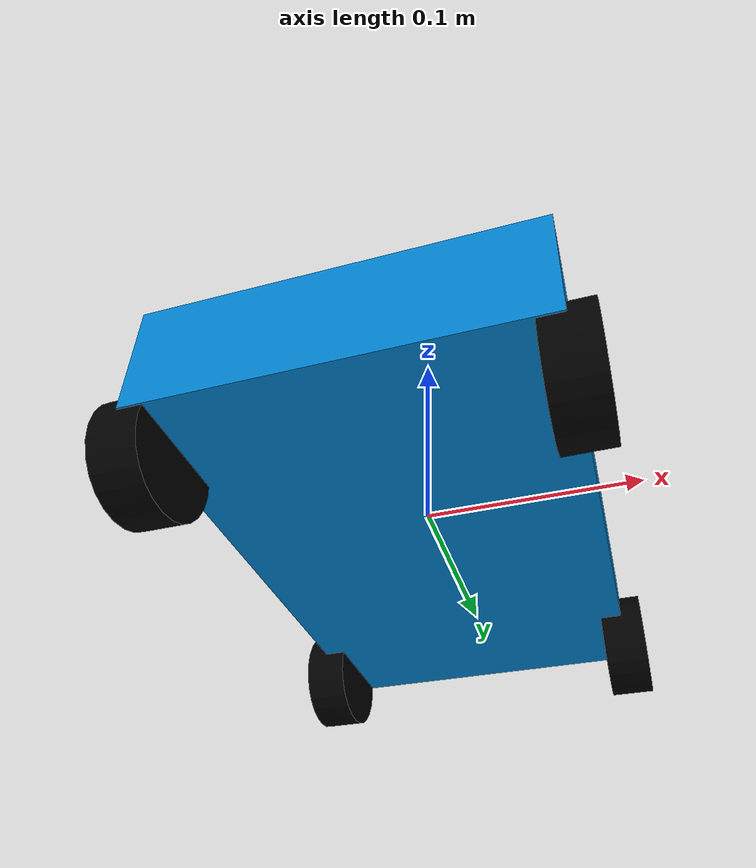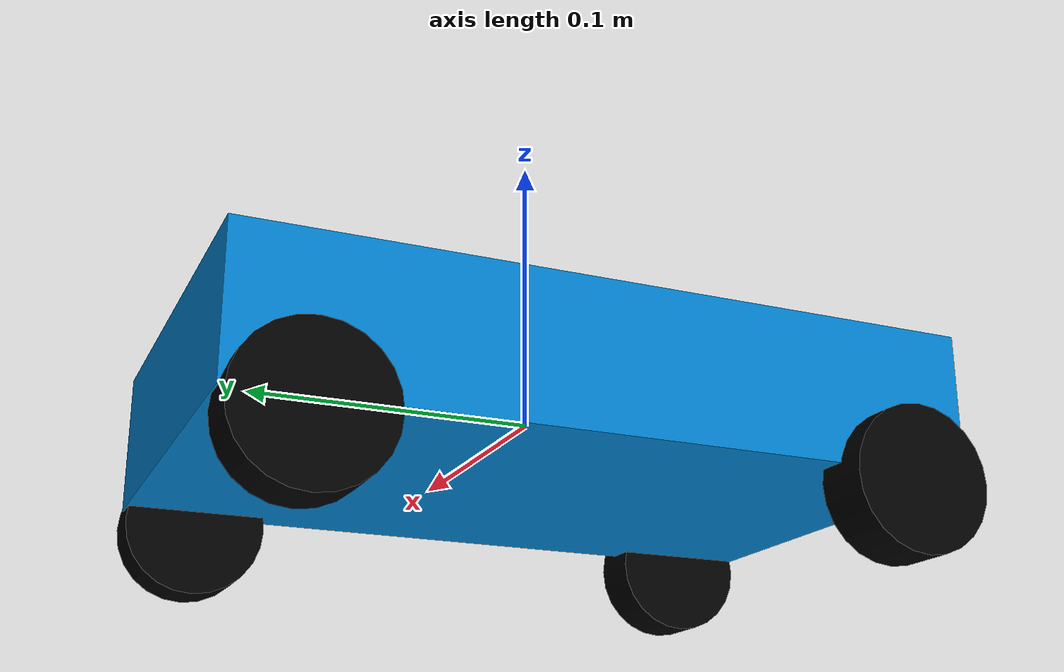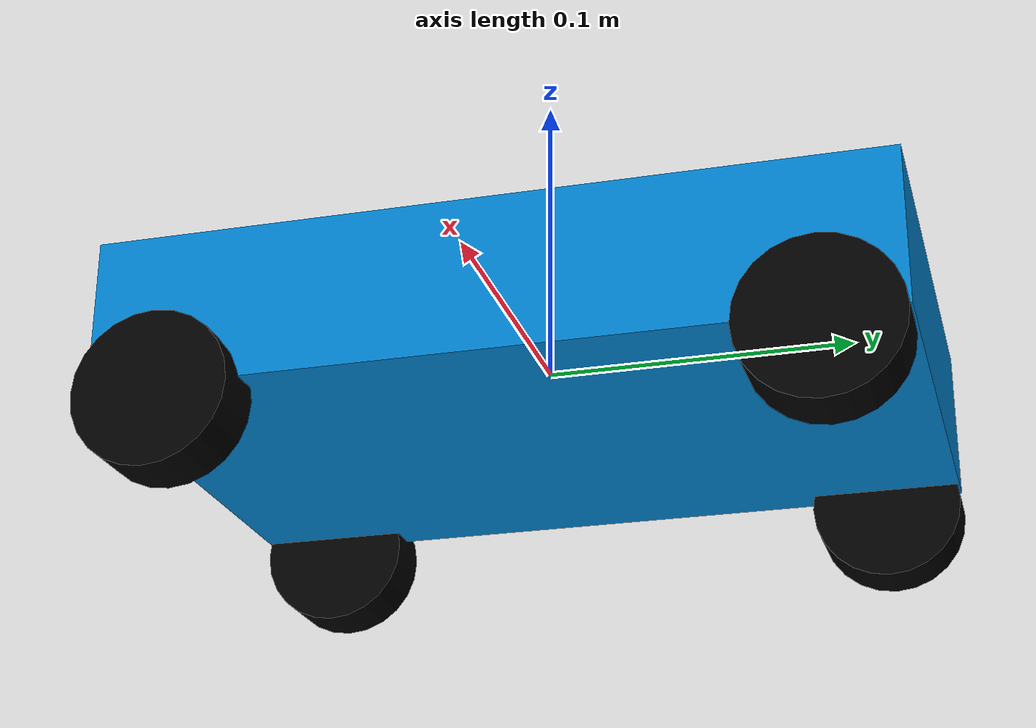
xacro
<?xml version="1.0"?>
<robot name="smartcar">
	<link name="base_link">
		<visual>
			<geometry>
				<box size="0.25 .16 .05" />
			</geometry>
			<origin rpy="0 0 1.57075" xyz="0 0 0" />
			<material name="blue">
				<color rgba="0 .5 .8 1" />
			</material>
		</visual>

		<collision>

			<geometry>

				<box size="0.25 .16 .05" />

			</geometry>

		</collision>

		<inertial>

			<mass value="1.0" />

			<inertia ixx="0.0054" iyy="0.0073" izz="0.0023" ixy="0" ixz="0" iyz="0" />

		</inertial>
	</link>
	<gazebo reference="base_link">
		<material>
			Gazebo/Blue
		</material>
	</gazebo>
	<link name="right_front_wheel">
		<visual>
			<geometry>
				<cylinder length=".02" radius="0.025" />
			</geometry>
			<material name="black">
				<color rgba="0 0 0 1" />
			</material>
		</visual>

		<collision>

			<geometry>

				<cylinder length=".02" radius="0.025" />

			</geometry>

		</collision>

		<inertial>

			<mass value="0.1" />

			<inertia ixx="0.0000189" iyy=".0000189583" izz="0.00003125" ixy="0" ixz="0" iyz="0" />

		</inertial>
	</link>
	<joint name="right_front_wheel_joint" type="continuous">
		<axis xyz="0 0 1" />
		<parent link="base_link" />
		<child link="right_front_wheel" />
		<origin rpy="0 1.57075 0" xyz="0.08 0.1 -0.03" />
		<limit effort="100" velocity="100" />
		<joint_properties damping="0.0" friction="0.0" />
	</joint>
	<gazebo reference="right_front_wheel">
		<material>
			Gazebo/Black
		</material>
	</gazebo>
	<link name="right_back_wheel">
		<visual>
			<geometry>
				<cylinder length=".02" radius="0.025" />
			</geometry>
			<material name="black">
				<color rgba="0 0 0 1" />
			</material>
		</visual>

		<collision>

			<geometry>

				<cylinder length=".02" radius="0.025" />

			</geometry>

		</collision>

		<inertial>

			<mass value="0.1" />

			<inertia ixx="0.0000189" iyy=".0000189583" izz="0.00003125" ixy="0" ixz="0" iyz="0" />

		</inertial>
	</link>
	<joint name="right_back_wheel_joint" type="continuous">
		<axis xyz="0 0 1" />
		<parent link="base_link" />
		<child link="right_back_wheel" />
		<origin rpy="0 1.57075 0" xyz="0.08 -0.1 -0.03" />
		<limit effort="100" velocity="100" />
		<joint_properties damping="0.0" friction="0.0" />
	</joint>
	<gazebo reference="right_back_wheel">
		<material>
			Gazebo/Black
		</material>
	</gazebo>
	<link name="left_front_wheel">
		<visual>
			<geometry>
				<cylinder length=".02" radius="0.025" />
			</geometry>
			<material name="black">
				<color rgba="0 0 0 1" />
			</material>
		</visual>

		<collision>

			<geometry>

				<cylinder length=".02" radius="0.025" />

			</geometry>

		</collision>

		<inertial>

			<mass value="0.1" />

			<inertia ixx="0.0000189" iyy=".0000189583" izz="0.00003125" ixy="0" ixz="0" iyz="0" />

		</inertial>
	</link>
	<joint name="left_front_wheel_joint" type="continuous">
		<axis xyz="0 0 1" />
		<parent link="base_link" />
		<child link="left_front_wheel" />
		<origin rpy="0 1.57075 0" xyz="-0.08 0.1 -0.03" />
		<limit effort="100" velocity="100" />
		<joint_properties damping="0.0" friction="0.0" />
	</joint>
	<gazebo reference="left_front_wheel">
		<material>
			Gazebo/Black
		</material>
	</gazebo>
	<link name="left_back_wheel">
		<visual>
			<geometry>
				<cylinder length=".02" radius="0.025" />
			</geometry>
			<material name="black">
				<color rgba="0 0 0 1" />
			</material>
		</visual>

		<collision>

			<geometry>

				<cylinder length=".02" radius="0.025" />

			</geometry>

		</collision>

		<inertial>

			<mass value="0.1" />

			<inertia ixx="0.0000189" iyy=".0000189583" izz="0.00003125" ixy="0" ixz="0" iyz="0" />

		</inertial>
	</link>
	<joint name="left_back_wheel_joint" type="continuous">
		<axis xyz="0 0 1" />
		<parent link="base_link" />
		<child link="left_back_wheel" />
		<origin rpy="0 1.57075 0" xyz="-0.08 -0.1 -0.03" />
		<limit effort="100" velocity="100" />
		<joint_properties damping="0.0" friction="0.0" />
	</joint>
	<gazebo reference="left_back_wheel">
		<material>
			Gazebo/Black
		</material>
	</gazebo>
	<link name="head">
		<visual>
			<geometry>
				<box size=".02 .03 .03" />
			</geometry>
			<material name="white">
				<color rgba="1 1 1 1" />
			</material>
		</visual>

		<collision>

			<geometry>

				<box size="0.02 .03 .03" />

			</geometry>

		</collision>

		<inertial>

			<mass value="0.1" />

			<inertia ixx="0.000010833" iyy="0.000010833" izz="0.000015" ixy="0" ixz="0" iyz="0" />

		</inertial>
	</link>
	<joint name="tobox" type="fixed">
		<parent link="base_link" />
		<child link="head" />
		<origin xyz="0 -0.08 0.025" rpy="0 0 1.57" />
	</joint>
	<gazebo reference="tobox">
		<material>
			Gazebo/White
		</material>
	</gazebo>
	<gazebo>
		<plugin name="differential_drive_controller" filename="libgazebo_ros_diff_drive.so">
			<leftJoint>
				left_front_wheel_joint
			</leftJoint>
			<rightJoint>
				right_front_wheel_joint
			</rightJoint>
			<robotBaseFrame>
				base_link
			</robotBaseFrame>
			<wheelSeparation>
				0.14
			</wheelSeparation>
			<wheelDiameter>
				0.05
			</wheelDiameter>
			<legacyMode>
				true
			</legacyMode>
			<publishWheelJointState>
				true
			</publishWheelJointState>
		</plugin>
		<plugin name="differential_drive_controller" filename="libgazebo_ros_diff_drive.so">
			<leftJoint>
				left_back_wheel_joint
			</leftJoint>
			<rightJoint>
				right_back_wheel_joint
			</rightJoint>
			<robotBaseFrame>
				base_link
			</robotBaseFrame>
			<wheelSeparation>
				0.14
			</wheelSeparation>
			<wheelDiameter>
				0.05
			</wheelDiameter>
			<legacyMode>
				true
			</legacyMode>
			<publishWheelJointState>
				true
			</publishWheelJointState>
			<publishOdom>
				true
			</publishOdom>
			<robotBaseFrame>
				base_link
			</robotBaseFrame>
		</plugin>
	</gazebo>
</robot>
